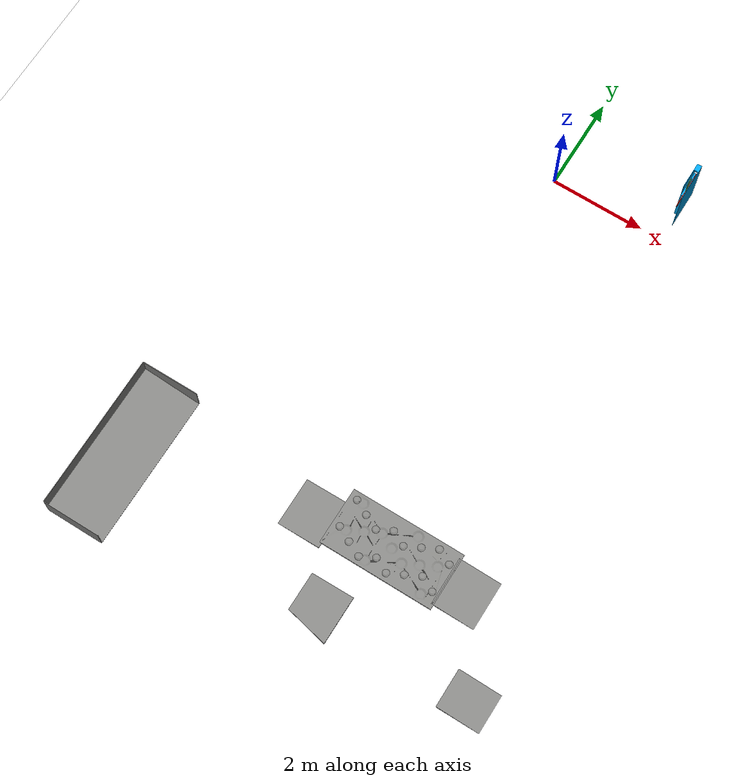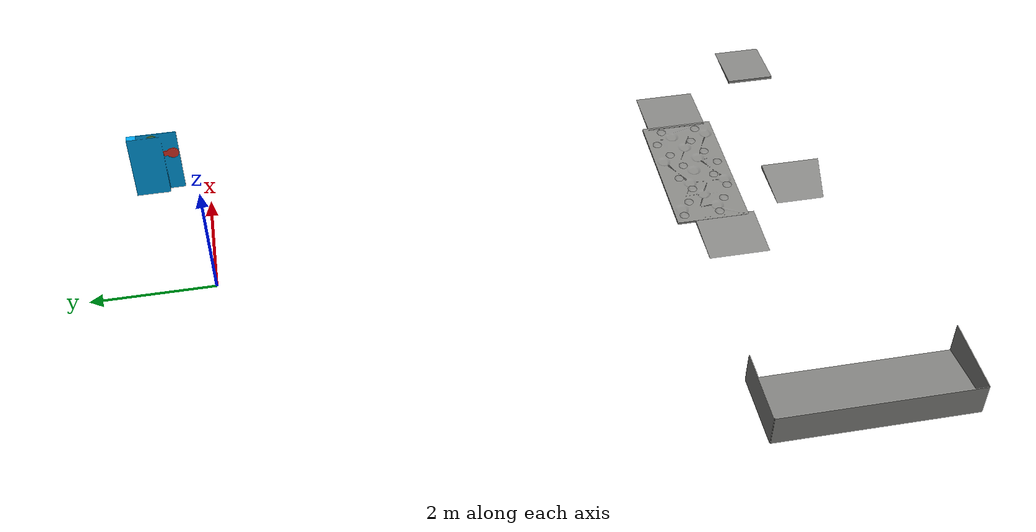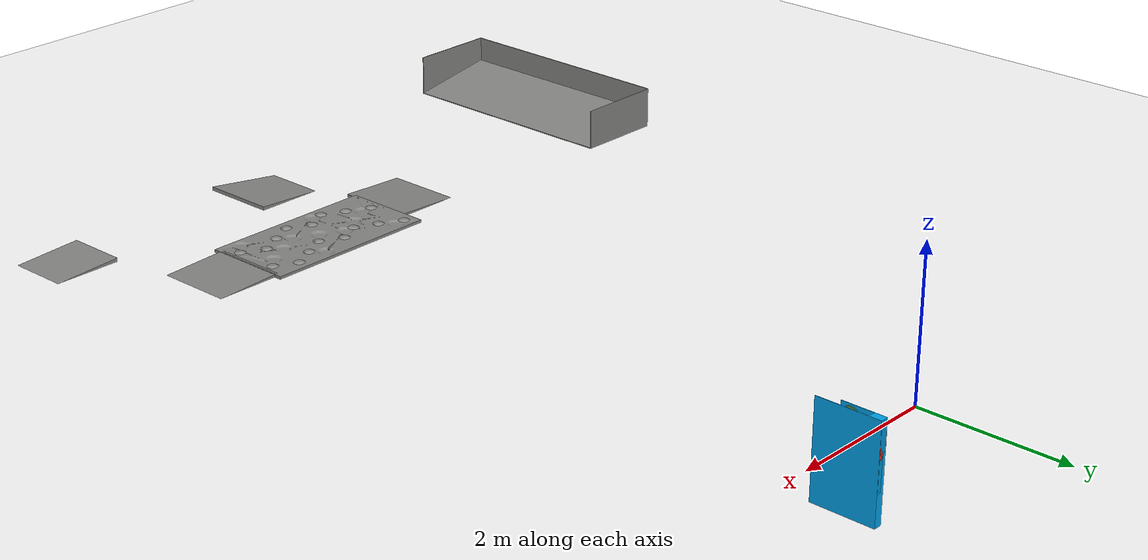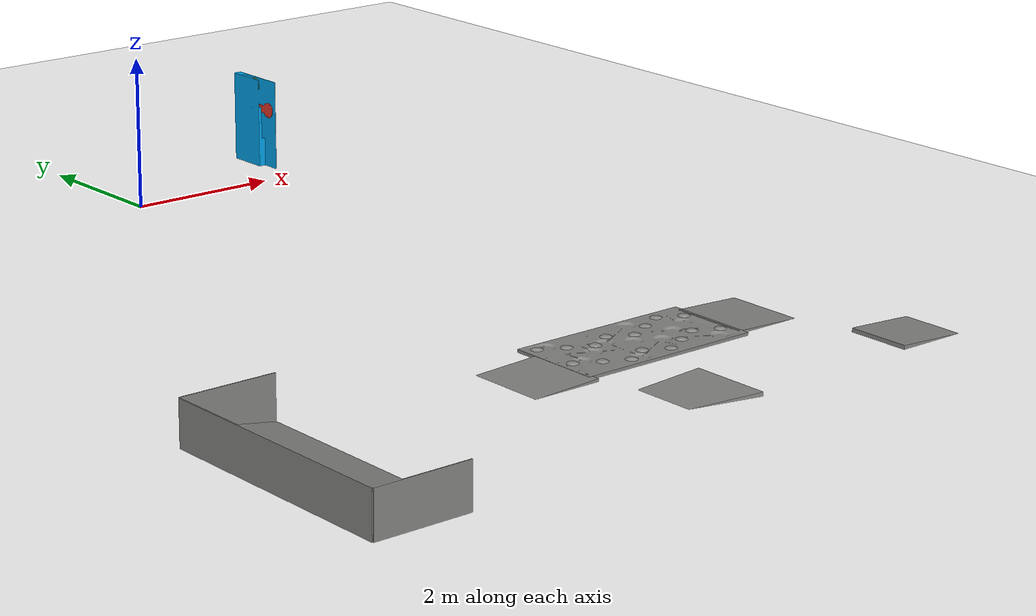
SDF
<sdf version="1.10">
 <world name="cfr_obstacle_course">
  <model name="ground">
   <static>true</static>
   <pose>0.005 -4.540 0 0 0 0</pose>
   <link name="link">
    <collision name="collision">
     <geometry><plane><normal>0 0 1</normal><size>30 24</size></plane></geometry>
     <surface>
      <friction>
       <ode><mu>50</mu></ode>
       <bullet><friction>1</friction><rolling_friction>0.001</rolling_friction></bullet>
      </friction>
     </surface>
    </collision>
    <visual name="visual">
     <geometry><plane><normal>0 0 1</normal><size>30 24</size></plane></geometry>
     <material>
      <diffuse>1 1 1 1</diffuse>
      <pbr>
       <metal>
        <albedo_map>model://cfr_arduino_bridge/materials/asphalt_obstacle.png</albedo_map>
        <roughness>0.95</roughness>
        <metalness>0</metalness>
       </metal>
      </pbr>
     </material>
    </visual>
   </link>
  </model>
  <model name="pothole_section">
   <static>true</static>
   <link name="link">
    <visual name="board_visual">
     <pose>1.2561 -8.2255 0.0000 0.0000 0.0000 0.0000</pose>
     <geometry><mesh><uri>model://cfr_arduino_bridge/meshes/pothole_board.stl</uri></mesh></geometry>
     <material><diffuse>0.52 0.52 0.51 1</diffuse></material>
    </visual>
    <collision name="base_collision">
     <pose>1.2561 -8.2255 0.0100 0.0000 0.0000 0.0000</pose>
     <geometry><box><size>2.4384 1.2192 0.0200</size></box></geometry>
    </collision>
    <collision name="top_0_collision">
     <pose>1.2569 -8.8051 0.0290 0.0000 0.0000 0.0000</pose>
     <geometry><box><size>2.4400 0.0600 0.0181</size></box></geometry>
    </collision>
    <collision name="top_1_collision">
     <pose>0.4669 -8.7651 0.0290 0.0000 0.0000 0.0000</pose>
     <geometry><box><size>0.8600 0.0200 0.0181</size></box></geometry>
    </collision>
    <collision name="top_2_collision">
     <pose>0.4569 -8.7451 0.0290 0.0000 0.0000 0.0000</pose>
     <geometry><box><size>0.8400 0.0200 0.0181</size></box></geometry>
    </collision>
    <collision name="top_3_collision">
     <pose>0.4469 -8.6851 0.0290 0.0000 0.0000 0.0000</pose>
     <geometry><box><size>0.8200 0.1000 0.0181</size></box></geometry>
    </collision>
    <collision name="top_4_collision">
     <pose>0.4569 -8.6251 0.0290 0.0000 0.0000 0.0000</pose>
     <geometry><box><size>0.8400 0.0200 0.0181</size></box></geometry>
    </collision>
    <collision name="top_5_collision">
     <pose>0.4669 -8.6051 0.0290 0.0000 0.0000 0.0000</pose>
     <geometry><box><size>0.8600 0.0200 0.0181</size></box></geometry>
    </collision>
    <collision name="top_6_collision">
     <pose>0.4869 -8.5851 0.0290 0.0000 0.0000 0.0000</pose>
     <geometry><box><size>0.9000 0.0200 0.0181</size></box></geometry>
    </collision>
    <collision name="top_7_collision">
     <pose>1.2569 -8.5251 0.0290 0.0000 0.0000 0.0000</pose>
     <geometry><box><size>2.4400 0.1000 0.0181</size></box></geometry>
    </collision>
    <collision name="top_8_collision">
     <pose>0.1669 -8.4651 0.0290 0.0000 0.0000 0.0000</pose>
     <geometry><box><size>0.2600 0.0200 0.0181</size></box></geometry>
    </collision>
    <collision name="top_9_collision">
     <pose>0.1569 -8.4451 0.0290 0.0000 0.0000 0.0000</pose>
     <geometry><box><size>0.2400 0.0200 0.0181</size></box></geometry>
    </collision>
    <collision name="top_10_collision">
     <pose>0.1469 -8.4151 0.0290 0.0000 0.0000 0.0000</pose>
     <geometry><box><size>0.2200 0.0400 0.0181</size></box></geometry>
    </collision>
    <collision name="top_11_collision">
     <pose>0.1369 -8.3751 0.0290 0.0000 0.0000 0.0000</pose>
     <geometry><box><size>0.2000 0.0400 0.0181</size></box></geometry>
    </collision>
    <collision name="top_12_collision">
     <pose>0.1469 -8.3351 0.0290 0.0000 0.0000 0.0000</pose>
     <geometry><box><size>0.2200 0.0400 0.0181</size></box></geometry>
    </collision>
    <collision name="top_13_collision">
     <pose>0.1569 -8.3051 0.0290 0.0000 0.0000 0.0000</pose>
     <geometry><box><size>0.2400 0.0200 0.0181</size></box></geometry>
    </collision>
    <collision name="top_14_collision">
     <pose>0.1769 -8.2851 0.0290 0.0000 0.0000 0.0000</pose>
     <geometry><box><size>0.2800 0.0200 0.0181</size></box></geometry>
    </collision>
    <collision name="top_15_collision">
     <pose>0.2969 -8.2251 0.0290 0.0000 0.0000 0.0000</pose>
     <geometry><box><size>0.5200 0.1000 0.0181</size></box></geometry>
    </collision>
    <collision name="top_16_collision">
     <pose>0.3069 -8.1651 0.0290 0.0000 0.0000 0.0000</pose>
     <geometry><box><size>0.5400 0.0200 0.0181</size></box></geometry>
    </collision>
    <collision name="top_17_collision">
     <pose>0.3169 -8.1451 0.0290 0.0000 0.0000 0.0000</pose>
     <geometry><box><size>0.5600 0.0200 0.0181</size></box></geometry>
    </collision>
    <collision name="top_18_collision">
     <pose>0.4569 -8.1251 0.0290 0.0000 0.0000 0.0000</pose>
     <geometry><box><size>0.8400 0.0200 0.0181</size></box></geometry>
    </collision>
    <collision name="top_19_collision">
     <pose>0.4469 -8.0651 0.0290 0.0000 0.0000 0.0000</pose>
     <geometry><box><size>0.8200 0.1000 0.0181</size></box></geometry>
    </collision>
    <collision name="top_20_collision">
     <pose>0.4569 -8.0051 0.0290 0.0000 0.0000 0.0000</pose>
     <geometry><box><size>0.8400 0.0200 0.0181</size></box></geometry>
    </collision>
    <collision name="top_21_collision">
     <pose>0.4769 -7.9851 0.0290 0.0000 0.0000 0.0000</pose>
     <geometry><box><size>0.8800 0.0200 0.0181</size></box></geometry>
    </collision>
    <collision name="top_22_collision">
     <pose>1.2569 -7.9251 0.0290 0.0000 0.0000 0.0000</pose>
     <geometry><box><size>2.4400 0.1000 0.0181</size></box></geometry>
    </collision>
    <collision name="top_23_collision">
     <pose>0.1769 -7.8651 0.0290 0.0000 0.0000 0.0000</pose>
     <geometry><box><size>0.2800 0.0200 0.0181</size></box></geometry>
    </collision>
    <collision name="top_24_collision">
     <pose>0.1569 -7.8451 0.0290 0.0000 0.0000 0.0000</pose>
     <geometry><box><size>0.2400 0.0200 0.0181</size></box></geometry>
    </collision>
    <collision name="top_25_collision">
     <pose>0.1469 -7.7851 0.0290 0.0000 0.0000 0.0000</pose>
     <geometry><box><size>0.2200 0.1000 0.0181</size></box></geometry>
    </collision>
    <collision name="top_26_collision">
     <pose>0.1369 -7.7251 0.0290 0.0000 0.0000 0.0000</pose>
     <geometry><box><size>0.2000 0.0200 0.0181</size></box></geometry>
    </collision>
    <collision name="top_27_collision">
     <pose>0.1269 -7.7051 0.0290 0.0000 0.0000 0.0000</pose>
     <geometry><box><size>0.1800 0.0200 0.0181</size></box></geometry>
    </collision>
    <collision name="top_28_collision">
     <pose>0.1169 -7.6851 0.0290 0.0000 0.0000 0.0000</pose>
     <geometry><box><size>0.1600 0.0200 0.0181</size></box></geometry>
    </collision>
    <collision name="top_29_collision">
     <pose>0.1069 -7.6651 0.0290 0.0000 0.0000 0.0000</pose>
     <geometry><box><size>0.1400 0.0200 0.0181</size></box></geometry>
    </collision>
    <collision name="top_30_collision">
     <pose>1.2569 -7.6351 0.0290 0.0000 0.0000 0.0000</pose>
     <geometry><box><size>2.4400 0.0400 0.0181</size></box></geometry>
    </collision>
    <collision name="top_31_collision">
     <pose>1.3369 -7.6651 0.0290 0.0000 0.0000 0.0000</pose>
     <geometry><box><size>2.2800 0.0200 0.0181</size></box></geometry>
    </collision>
    <collision name="top_32_collision">
     <pose>0.9469 -7.8651 0.0290 0.0000 0.0000 0.0000</pose>
     <geometry><box><size>1.1800 0.0200 0.0181</size></box></geometry>
    </collision>
    <collision name="top_33_collision">
     <pose>0.4769 -8.2851 0.0290 0.0000 0.0000 0.0000</pose>
     <geometry><box><size>0.2000 0.0200 0.0181</size></box></geometry>
    </collision>
    <collision name="top_34_collision">
     <pose>0.9569 -8.4651 0.0290 0.0000 0.0000 0.0000</pose>
     <geometry><box><size>1.1200 0.0200 0.0181</size></box></geometry>
    </collision>
    <collision name="top_35_collision">
     <pose>0.9469 -7.8451 0.0290 0.0000 0.0000 0.0000</pose>
     <geometry><box><size>1.1000 0.0200 0.0181</size></box></geometry>
    </collision>
    <collision name="top_36_collision">
     <pose>0.9569 -7.6851 0.0290 0.0000 0.0000 0.0000</pose>
     <geometry><box><size>1.1200 0.0200 0.0181</size></box></geometry>
    </collision>
    <collision name="top_37_collision">
     <pose>0.9569 -8.4451 0.0290 0.0000 0.0000 0.0000</pose>
     <geometry><box><size>1.0800 0.0200 0.0181</size></box></geometry>
    </collision>
    <collision name="top_38_collision">
     <pose>0.9469 -8.3251 0.0290 0.0000 0.0000 0.0000</pose>
     <geometry><box><size>1.0600 0.0200 0.0181</size></box></geometry>
    </collision>
    <collision name="top_39_collision">
     <pose>0.5069 -8.3051 0.0290 0.0000 0.0000 0.0000</pose>
     <geometry><box><size>0.1800 0.0200 0.0181</size></box></geometry>
    </collision>
    <collision name="top_40_collision">
     <pose>0.9469 -7.8251 0.0290 0.0000 0.0000 0.0000</pose>
     <geometry><box><size>1.0600 0.0200 0.0181</size></box></geometry>
    </collision>
    <collision name="top_41_collision">
     <pose>0.9469 -7.7051 0.0290 0.0000 0.0000 0.0000</pose>
     <geometry><box><size>1.0600 0.0200 0.0181</size></box></geometry>
    </collision>
    <collision name="top_42_collision">
     <pose>0.9469 -8.3951 0.0290 0.0000 0.0000 0.0000</pose>
     <geometry><box><size>1.0200 0.0800 0.0181</size></box></geometry>
    </collision>
    <collision name="top_43_collision">
     <pose>0.9569 -8.3451 0.0290 0.0000 0.0000 0.0000</pose>
     <geometry><box><size>1.0400 0.0200 0.0181</size></box></geometry>
    </collision>
    <collision name="top_44_collision">
     <pose>0.9569 -7.8051 0.0290 0.0000 0.0000 0.0000</pose>
     <geometry><box><size>1.0400 0.0200 0.0181</size></box></geometry>
    </collision>
    <collision name="top_45_collision">
     <pose>0.9469 -7.7651 0.0290 0.0000 0.0000 0.0000</pose>
     <geometry><box><size>1.0200 0.0600 0.0181</size></box></geometry>
    </collision>
    <collision name="top_46_collision">
     <pose>0.9569 -7.7251 0.0290 0.0000 0.0000 0.0000</pose>
     <geometry><box><size>1.0400 0.0200 0.0181</size></box></geometry>
    </collision>
    <collision name="top_47_collision">
     <pose>0.9469 -8.3051 0.0290 0.0000 0.0000 0.0000</pose>
     <geometry><box><size>0.5000 0.0200 0.0181</size></box></geometry>
    </collision>
    <collision name="top_48_collision">
     <pose>0.7869 -8.1451 0.0290 0.0000 0.0000 0.0000</pose>
     <geometry><box><size>0.1800 0.0200 0.0181</size></box></geometry>
    </collision>
    <collision name="top_49_collision">
     <pose>0.9469 -8.2851 0.0290 0.0000 0.0000 0.0000</pose>
     <geometry><box><size>0.4600 0.0200 0.0181</size></box></geometry>
    </collision>
    <collision name="top_50_collision">
     <pose>0.8169 -8.1651 0.0290 0.0000 0.0000 0.0000</pose>
     <geometry><box><size>0.2000 0.0200 0.0181</size></box></geometry>
    </collision>
    <collision name="top_51_collision">
     <pose>0.9469 -8.2151 0.0290 0.0000 0.0000 0.0000</pose>
     <geometry><box><size>0.4200 0.0800 0.0181</size></box></geometry>
    </collision>
    <collision name="top_52_collision">
     <pose>0.9569 -8.2651 0.0290 0.0000 0.0000 0.0000</pose>
     <geometry><box><size>0.4000 0.0200 0.0181</size></box></geometry>
    </collision>
    <collision name="top_53_collision">
     <pose>1.5569 -8.5851 0.0290 0.0000 0.0000 0.0000</pose>
     <geometry><box><size>1.2000 0.0200 0.0181</size></box></geometry>
    </collision>
    <collision name="top_54_collision">
     <pose>1.0769 -8.1651 0.0290 0.0000 0.0000 0.0000</pose>
     <geometry><box><size>0.2000 0.0200 0.0181</size></box></geometry>
    </collision>
    <collision name="top_55_collision">
     <pose>1.5569 -8.7651 0.0290 0.0000 0.0000 0.0000</pose>
     <geometry><box><size>1.1200 0.0200 0.0181</size></box></geometry>
    </collision>
    <collision name="top_56_collision">
     <pose>1.5569 -7.9851 0.0290 0.0000 0.0000 0.0000</pose>
     <geometry><box><size>1.1200 0.0200 0.0181</size></box></geometry>
    </collision>
    <collision name="top_57_collision">
     <pose>1.5669 -8.6051 0.0290 0.0000 0.0000 0.0000</pose>
     <geometry><box><size>1.1000 0.0200 0.0181</size></box></geometry>
    </collision>
    <collision name="top_58_collision">
     <pose>1.1069 -8.1451 0.0290 0.0000 0.0000 0.0000</pose>
     <geometry><box><size>0.1800 0.0200 0.0181</size></box></geometry>
    </collision>
    <collision name="top_59_collision">
     <pose>1.5569 -8.0051 0.0290 0.0000 0.0000 0.0000</pose>
     <geometry><box><size>1.0800 0.0200 0.0181</size></box></geometry>
    </collision>
    <collision name="top_60_collision">
     <pose>1.5669 -8.7451 0.0290 0.0000 0.0000 0.0000</pose>
     <geometry><box><size>1.0600 0.0200 0.0181</size></box></geometry>
    </collision>
    <collision name="top_61_collision">
     <pose>1.5569 -8.7251 0.0290 0.0000 0.0000 0.0000</pose>
     <geometry><box><size>1.0400 0.0200 0.0181</size></box></geometry>
    </collision>
    <collision name="top_62_collision">
     <pose>1.5569 -8.6451 0.0290 0.0000 0.0000 0.0000</pose>
     <geometry><box><size>1.0400 0.0200 0.0181</size></box></geometry>
    </collision>
    <collision name="top_63_collision">
     <pose>1.5669 -8.6251 0.0290 0.0000 0.0000 0.0000</pose>
     <geometry><box><size>1.0600 0.0200 0.0181</size></box></geometry>
    </collision>
    <collision name="top_64_collision">
     <pose>1.5669 -8.1251 0.0290 0.0000 0.0000 0.0000</pose>
     <geometry><box><size>1.0600 0.0200 0.0181</size></box></geometry>
    </collision>
    <collision name="top_65_collision">
     <pose>1.5569 -8.1051 0.0290 0.0000 0.0000 0.0000</pose>
     <geometry><box><size>1.0400 0.0200 0.0181</size></box></geometry>
    </collision>
    <collision name="top_66_collision">
     <pose>1.5569 -8.0451 0.0290 0.0000 0.0000 0.0000</pose>
     <geometry><box><size>1.0400 0.0200 0.0181</size></box></geometry>
    </collision>
    <collision name="top_67_collision">
     <pose>1.0469 -8.0251 0.0290 0.0000 0.0000 0.0000</pose>
     <geometry><box><size>0.0200 0.0200 0.0181</size></box></geometry>
    </collision>
    <collision name="top_68_collision">
     <pose>1.5669 -8.6851 0.0290 0.0000 0.0000 0.0000</pose>
     <geometry><box><size>1.0200 0.0600 0.0181</size></box></geometry>
    </collision>
    <collision name="top_69_collision">
     <pose>1.5669 -8.0751 0.0290 0.0000 0.0000 0.0000</pose>
     <geometry><box><size>1.0200 0.0400 0.0181</size></box></geometry>
    </collision>
    <collision name="top_70_collision">
     <pose>1.5769 -8.0251 0.0290 0.0000 0.0000 0.0000</pose>
     <geometry><box><size>1.0000 0.0200 0.0181</size></box></geometry>
    </collision>
    <collision name="top_71_collision">
     <pose>1.4069 -8.3051 0.0290 0.0000 0.0000 0.0000</pose>
     <geometry><box><size>0.1800 0.0200 0.0181</size></box></geometry>
    </collision>
    <collision name="top_72_collision">
     <pose>1.5669 -8.1451 0.0290 0.0000 0.0000 0.0000</pose>
     <geometry><box><size>0.5000 0.0200 0.0181</size></box></geometry>
    </collision>
    <collision name="top_73_collision">
     <pose>1.4369 -8.2851 0.0290 0.0000 0.0000 0.0000</pose>
     <geometry><box><size>0.2000 0.0200 0.0181</size></box></geometry>
    </collision>
    <collision name="top_74_collision">
     <pose>1.5569 -8.2651 0.0290 0.0000 0.0000 0.0000</pose>
     <geometry><box><size>0.4400 0.0200 0.0181</size></box></geometry>
    </collision>
    <collision name="top_75_collision">
     <pose>1.5569 -8.1851 0.0290 0.0000 0.0000 0.0000</pose>
     <geometry><box><size>0.4400 0.0200 0.0181</size></box></geometry>
    </collision>
    <collision name="top_76_collision">
     <pose>1.5669 -8.1651 0.0290 0.0000 0.0000 0.0000</pose>
     <geometry><box><size>0.4600 0.0200 0.0181</size></box></geometry>
    </collision>
    <collision name="top_77_collision">
     <pose>1.5669 -8.2251 0.0290 0.0000 0.0000 0.0000</pose>
     <geometry><box><size>0.4200 0.0600 0.0181</size></box></geometry>
    </collision>
    <collision name="top_78_collision">
     <pose>2.0269 -7.8651 0.0290 0.0000 0.0000 0.0000</pose>
     <geometry><box><size>0.9000 0.0200 0.0181</size></box></geometry>
    </collision>
    <collision name="top_79_collision">
     <pose>2.0369 -8.4651 0.0290 0.0000 0.0000 0.0000</pose>
     <geometry><box><size>0.8800 0.0200 0.0181</size></box></geometry>
    </collision>
    <collision name="top_80_collision">
     <pose>1.6969 -8.2851 0.0290 0.0000 0.0000 0.0000</pose>
     <geometry><box><size>0.2000 0.0200 0.0181</size></box></geometry>
    </collision>
    <collision name="top_81_collision">
     <pose>2.0469 -7.8451 0.0290 0.0000 0.0000 0.0000</pose>
     <geometry><box><size>0.8600 0.0200 0.0181</size></box></geometry>
    </collision>
    <collision name="top_82_collision">
     <pose>2.0469 -7.6851 0.0290 0.0000 0.0000 0.0000</pose>
     <geometry><box><size>0.8600 0.0200 0.0181</size></box></geometry>
    </collision>
    <collision name="top_83_collision">
     <pose>2.0569 -8.4451 0.0290 0.0000 0.0000 0.0000</pose>
     <geometry><box><size>0.8400 0.0200 0.0181</size></box></geometry>
    </collision>
    <collision name="top_84_collision">
     <pose>2.0569 -8.3251 0.0290 0.0000 0.0000 0.0000</pose>
     <geometry><box><size>0.8400 0.0200 0.0181</size></box></geometry>
    </collision>
    <collision name="top_85_collision">
     <pose>1.7269 -8.3051 0.0290 0.0000 0.0000 0.0000</pose>
     <geometry><box><size>0.1800 0.0200 0.0181</size></box></geometry>
    </collision>
    <collision name="top_86_collision">
     <pose>2.0569 -7.8251 0.0290 0.0000 0.0000 0.0000</pose>
     <geometry><box><size>0.8400 0.0200 0.0181</size></box></geometry>
    </collision>
    <collision name="top_87_collision">
     <pose>2.0569 -7.7051 0.0290 0.0000 0.0000 0.0000</pose>
     <geometry><box><size>0.8400 0.0200 0.0181</size></box></geometry>
    </collision>
    <collision name="top_88_collision">
     <pose>2.0669 -8.3851 0.0290 0.0000 0.0000 0.0000</pose>
     <geometry><box><size>0.8200 0.1000 0.0181</size></box></geometry>
    </collision>
    <collision name="top_89_collision">
     <pose>2.0669 -7.7651 0.0290 0.0000 0.0000 0.0000</pose>
     <geometry><box><size>0.8200 0.1000 0.0181</size></box></geometry>
    </collision>
    <collision name="top_90_collision">
     <pose>2.1969 -8.3051 0.0290 0.0000 0.0000 0.0000</pose>
     <geometry><box><size>0.5600 0.0200 0.0181</size></box></geometry>
    </collision>
    <collision name="top_91_collision">
     <pose>2.0069 -8.1451 0.0290 0.0000 0.0000 0.0000</pose>
     <geometry><box><size>0.1800 0.0200 0.0181</size></box></geometry>
    </collision>
    <collision name="top_92_collision">
     <pose>2.2069 -8.2851 0.0290 0.0000 0.0000 0.0000</pose>
     <geometry><box><size>0.5400 0.0200 0.0181</size></box></geometry>
    </collision>
    <collision name="top_93_collision">
     <pose>2.0369 -8.1651 0.0290 0.0000 0.0000 0.0000</pose>
     <geometry><box><size>0.2000 0.0200 0.0181</size></box></geometry>
    </collision>
    <collision name="top_94_collision">
     <pose>2.2169 -8.2251 0.0290 0.0000 0.0000 0.0000</pose>
     <geometry><box><size>0.5200 0.1000 0.0181</size></box></geometry>
    </collision>
    <collision name="top_95_collision">
     <pose>2.3269 -8.5851 0.0290 0.0000 0.0000 0.0000</pose>
     <geometry><box><size>0.3000 0.0200 0.0181</size></box></geometry>
    </collision>
    <collision name="top_96_collision">
     <pose>2.3369 -8.1651 0.0290 0.0000 0.0000 0.0000</pose>
     <geometry><box><size>0.2800 0.0200 0.0181</size></box></geometry>
    </collision>
    <collision name="top_97_collision">
     <pose>2.3469 -8.7651 0.0290 0.0000 0.0000 0.0000</pose>
     <geometry><box><size>0.2600 0.0200 0.0181</size></box></geometry>
    </collision>
    <collision name="top_98_collision">
     <pose>2.3469 -7.9851 0.0290 0.0000 0.0000 0.0000</pose>
     <geometry><box><size>0.2600 0.0200 0.0181</size></box></geometry>
    </collision>
    <collision name="top_99_collision">
     <pose>2.3569 -8.6051 0.0290 0.0000 0.0000 0.0000</pose>
     <geometry><box><size>0.2400 0.0200 0.0181</size></box></geometry>
    </collision>
    <collision name="top_100_collision">
     <pose>2.3569 -8.1451 0.0290 0.0000 0.0000 0.0000</pose>
     <geometry><box><size>0.2400 0.0200 0.0181</size></box></geometry>
    </collision>
    <collision name="top_101_collision">
     <pose>2.3569 -8.0051 0.0290 0.0000 0.0000 0.0000</pose>
     <geometry><box><size>0.2400 0.0200 0.0181</size></box></geometry>
    </collision>
    <collision name="top_102_collision">
     <pose>2.3669 -8.7451 0.0290 0.0000 0.0000 0.0000</pose>
     <geometry><box><size>0.2200 0.0200 0.0181</size></box></geometry>
    </collision>
    <collision name="top_103_collision">
     <pose>2.3669 -8.6551 0.0290 0.0000 0.0000 0.0000</pose>
     <geometry><box><size>0.2200 0.0800 0.0181</size></box></geometry>
    </collision>
    <collision name="top_104_collision">
     <pose>2.2669 -8.1151 0.0290 0.0000 0.0000 0.0000</pose>
     <geometry><box><size>0.0200 0.0400 0.0181</size></box></geometry>
    </collision>
    <collision name="top_105_collision">
     <pose>2.2669 -8.0351 0.0290 0.0000 0.0000 0.0000</pose>
     <geometry><box><size>0.0200 0.0400 0.0181</size></box></geometry>
    </collision>
    <collision name="top_106_collision">
     <pose>2.3769 -8.7151 0.0290 0.0000 0.0000 0.0000</pose>
     <geometry><box><size>0.2000 0.0400 0.0181</size></box></geometry>
    </collision>
    <collision name="top_107_collision">
     <pose>2.3869 -8.0751 0.0290 0.0000 0.0000 0.0000</pose>
     <geometry><box><size>0.1800 0.1200 0.0181</size></box></geometry>
    </collision>
    <visual name="bump_0_visual">
     <pose>0.1958 -7.7682 0.0000 0.0000 0.0000 0.0000</pose>
     <geometry><mesh><uri>model://cfr_arduino_bridge/meshes/pothole_bump.stl</uri></mesh></geometry>
     <material><diffuse>0.52 0.52 0.51 1</diffuse></material>
    </visual>
    <collision name="bump_0_body_collision">
     <pose>0.1958 -7.7682 0.0476 0.0000 0.0000 0.0000</pose>
     <geometry><cylinder><radius>0.0760</radius><length>0.0190</length></cylinder></geometry>
    </collision>
    <visual name="bump_1_visual">
     <pose>0.1958 -8.3778 0.0000 0.0000 0.0000 0.0000</pose>
     <geometry><mesh><uri>model://cfr_arduino_bridge/meshes/pothole_bump.stl</uri></mesh></geometry>
     <material><diffuse>0.52 0.52 0.51 1</diffuse></material>
    </visual>
    <collision name="bump_1_body_collision">
     <pose>0.1958 -8.3778 0.0476 0.0000 0.0000 0.0000</pose>
     <geometry><cylinder><radius>0.0760</radius><length>0.0190</length></cylinder></geometry>
    </collision>
    <visual name="bump_2_visual">
     <pose>0.5005 -7.9269 0.0000 0.0000 0.0000 0.0000</pose>
     <geometry><mesh><uri>model://cfr_arduino_bridge/meshes/pothole_bump.stl</uri></mesh></geometry>
     <material><diffuse>0.52 0.52 0.51 1</diffuse></material>
    </visual>
    <collision name="bump_2_body_collision">
     <pose>0.5005 -7.9269 0.0476 0.0000 0.0000 0.0000</pose>
     <geometry><cylinder><radius>0.0760</radius><length>0.0190</length></cylinder></geometry>
    </collision>
    <visual name="bump_3_visual">
     <pose>0.5005 -8.5365 0.0000 0.0000 0.0000 0.0000</pose>
     <geometry><mesh><uri>model://cfr_arduino_bridge/meshes/pothole_bump.stl</uri></mesh></geometry>
     <material><diffuse>0.52 0.52 0.51 1</diffuse></material>
    </visual>
    <collision name="bump_3_body_collision">
     <pose>0.5005 -8.5365 0.0476 0.0000 0.0000 0.0000</pose>
     <geometry><cylinder><radius>0.0760</radius><length>0.0190</length></cylinder></geometry>
    </collision>
    <visual name="bump_4_visual">
     <pose>1.1038 -7.9206 0.0000 0.0000 0.0000 0.0000</pose>
     <geometry><mesh><uri>model://cfr_arduino_bridge/meshes/pothole_bump.stl</uri></mesh></geometry>
     <material><diffuse>0.52 0.52 0.51 1</diffuse></material>
    </visual>
    <collision name="bump_4_body_collision">
     <pose>1.1038 -7.9206 0.0476 0.0000 0.0000 0.0000</pose>
     <geometry><cylinder><radius>0.0760</radius><length>0.0190</length></cylinder></geometry>
    </collision>
    <visual name="bump_5_visual">
     <pose>1.1038 -8.5302 0.0000 0.0000 0.0000 0.0000</pose>
     <geometry><mesh><uri>model://cfr_arduino_bridge/meshes/pothole_bump.stl</uri></mesh></geometry>
     <material><diffuse>0.52 0.52 0.51 1</diffuse></material>
    </visual>
    <collision name="bump_5_body_collision">
     <pose>1.1038 -8.5302 0.0476 0.0000 0.0000 0.0000</pose>
     <geometry><cylinder><radius>0.0760</radius><length>0.0190</length></cylinder></geometry>
    </collision>
    <visual name="bump_6_visual">
     <pose>1.7134 -7.9206 0.0000 0.0000 0.0000 0.0000</pose>
     <geometry><mesh><uri>model://cfr_arduino_bridge/meshes/pothole_bump.stl</uri></mesh></geometry>
     <material><diffuse>0.52 0.52 0.51 1</diffuse></material>
    </visual>
    <collision name="bump_6_body_collision">
     <pose>1.7134 -7.9206 0.0476 0.0000 0.0000 0.0000</pose>
     <geometry><cylinder><radius>0.0760</radius><length>0.0190</length></cylinder></geometry>
    </collision>
    <visual name="bump_7_visual">
     <pose>1.7134 -8.5302 0.0000 0.0000 0.0000 0.0000</pose>
     <geometry><mesh><uri>model://cfr_arduino_bridge/meshes/pothole_bump.stl</uri></mesh></geometry>
     <material><diffuse>0.52 0.52 0.51 1</diffuse></material>
    </visual>
    <collision name="bump_7_body_collision">
     <pose>1.7134 -8.5302 0.0476 0.0000 0.0000 0.0000</pose>
     <geometry><cylinder><radius>0.0760</radius><length>0.0190</length></cylinder></geometry>
    </collision>
    <visual name="bump_8_visual">
     <pose>1.4086 -8.0730 0.0000 0.0000 0.0000 0.0000</pose>
     <geometry><mesh><uri>model://cfr_arduino_bridge/meshes/pothole_bump.stl</uri></mesh></geometry>
     <material><diffuse>0.52 0.52 0.51 1</diffuse></material>
    </visual>
    <collision name="bump_8_body_collision">
     <pose>1.4086 -8.0730 0.0476 0.0000 0.0000 0.0000</pose>
     <geometry><cylinder><radius>0.0760</radius><length>0.0190</length></cylinder></geometry>
    </collision>
    <visual name="bump_9_visual">
     <pose>1.4086 -8.6826 0.0000 0.0000 0.0000 0.0000</pose>
     <geometry><mesh><uri>model://cfr_arduino_bridge/meshes/pothole_bump.stl</uri></mesh></geometry>
     <material><diffuse>0.52 0.52 0.51 1</diffuse></material>
    </visual>
    <collision name="bump_9_body_collision">
     <pose>1.4086 -8.6826 0.0476 0.0000 0.0000 0.0000</pose>
     <geometry><cylinder><radius>0.0760</radius><length>0.0190</length></cylinder></geometry>
    </collision>
    <visual name="bump_10_visual">
     <pose>2.0182 -7.7682 0.0000 0.0000 0.0000 0.0000</pose>
     <geometry><mesh><uri>model://cfr_arduino_bridge/meshes/pothole_bump.stl</uri></mesh></geometry>
     <material><diffuse>0.52 0.52 0.51 1</diffuse></material>
    </visual>
    <collision name="bump_10_body_collision">
     <pose>2.0182 -7.7682 0.0476 0.0000 0.0000 0.0000</pose>
     <geometry><cylinder><radius>0.0760</radius><length>0.0190</length></cylinder></geometry>
    </collision>
    <visual name="bump_11_visual">
     <pose>2.0182 -8.3778 0.0000 0.0000 0.0000 0.0000</pose>
     <geometry><mesh><uri>model://cfr_arduino_bridge/meshes/pothole_bump.stl</uri></mesh></geometry>
     <material><diffuse>0.52 0.52 0.51 1</diffuse></material>
    </visual>
    <collision name="bump_11_body_collision">
     <pose>2.0182 -8.3778 0.0476 0.0000 0.0000 0.0000</pose>
     <geometry><cylinder><radius>0.0760</radius><length>0.0190</length></cylinder></geometry>
    </collision>
    <visual name="bump_12_visual">
     <pose>2.3230 -7.9206 0.0000 0.0000 0.0000 0.0000</pose>
     <geometry><mesh><uri>model://cfr_arduino_bridge/meshes/pothole_bump.stl</uri></mesh></geometry>
     <material><diffuse>0.52 0.52 0.51 1</diffuse></material>
    </visual>
    <collision name="bump_12_body_collision">
     <pose>2.3230 -7.9206 0.0476 0.0000 0.0000 0.0000</pose>
     <geometry><cylinder><radius>0.0760</radius><length>0.0190</length></cylinder></geometry>
    </collision>
    <visual name="bump_13_visual">
     <pose>2.3230 -8.5302 0.0000 0.0000 0.0000 0.0000</pose>
     <geometry><mesh><uri>model://cfr_arduino_bridge/meshes/pothole_bump.stl</uri></mesh></geometry>
     <material><diffuse>0.52 0.52 0.51 1</diffuse></material>
    </visual>
    <collision name="bump_13_body_collision">
     <pose>2.3230 -8.5302 0.0476 0.0000 0.0000 0.0000</pose>
     <geometry><cylinder><radius>0.0760</radius><length>0.0190</length></cylinder></geometry>
    </collision>
    <visual name="bump_14_visual">
     <pose>0.8054 -8.0730 0.0000 0.0000 0.0000 0.0000</pose>
     <geometry><mesh><uri>model://cfr_arduino_bridge/meshes/pothole_bump.stl</uri></mesh></geometry>
     <material><diffuse>0.52 0.52 0.51 1</diffuse></material>
    </visual>
    <collision name="bump_14_body_collision">
     <pose>0.8054 -8.0730 0.0476 0.0000 0.0000 0.0000</pose>
     <geometry><cylinder><radius>0.0760</radius><length>0.0190</length></cylinder></geometry>
    </collision>
    <visual name="bump_15_visual">
     <pose>0.8054 -8.6826 0.0000 0.0000 0.0000 0.0000</pose>
     <geometry><mesh><uri>model://cfr_arduino_bridge/meshes/pothole_bump.stl</uri></mesh></geometry>
     <material><diffuse>0.52 0.52 0.51 1</diffuse></material>
    </visual>
    <collision name="bump_15_body_collision">
     <pose>0.8054 -8.6826 0.0476 0.0000 0.0000 0.0000</pose>
     <geometry><cylinder><radius>0.0760</radius><length>0.0190</length></cylinder></geometry>
    </collision>
   </link>
  </model>
  <model name="pothole_entry_ramp">
   <static>true</static>
   <link name="link">
    <visual name="pothole_entry_ramp_visual">
     <pose>-0.3693 -8.4286 0.0000 0.0000 0.0000 0.0000</pose>
     <geometry><mesh><uri>model://cfr_arduino_bridge/meshes/ramp_pothole_entry.stl</uri></mesh></geometry>
     <material><diffuse>0.52 0.52 0.51 1</diffuse></material>
    </visual>
    <collision name="pothole_entry_ramp_wedge_collision">
     <pose>-0.3693 -8.4286 -0.0010 0.0000 -0.0468 0.0000</pose>
     <geometry><box><size>0.8138 0.8129 0.0400</size></box></geometry>
    </collision>
   </link>
  </model>
  <model name="pothole_exit_ramp">
   <static>true</static>
   <link name="link">
    <visual name="pothole_exit_ramp_visual">
     <pose>2.8814 -8.2252 0.0000 0.0000 0.0000 3.1416</pose>
     <geometry><mesh><uri>model://cfr_arduino_bridge/meshes/ramp_pothole_entry.stl</uri></mesh></geometry>
     <material><diffuse>0.52 0.52 0.51 1</diffuse></material>
    </visual>
    <collision name="pothole_exit_ramp_wedge_collision">
     <pose>2.8814 -8.2252 -0.0010 0.0000 0.0468 0.0000</pose>
     <geometry><box><size>0.8138 1.2192 0.0400</size></box></geometry>
    </collision>
   </link>
  </model>
  <model name="gravel_entry_ramp">
   <static>true</static>
   <link name="link">
    <visual name="gravel_entry_ramp_visual">
     <pose>3.9476 -9.9089 0.0000 0.0000 0.0000 3.1416</pose>
     <geometry><mesh><uri>model://cfr_arduino_bridge/meshes/ramp_up.stl</uri></mesh></geometry>
     <material><diffuse>0.52 0.52 0.51 1</diffuse></material>
    </visual>
    <collision name="gravel_entry_ramp_wedge_collision">
     <pose>3.9476 -9.9089 0.0054 0.0000 0.0624 0.0000</pose>
     <geometry><box><size>0.8145 0.8126 0.0400</size></box></geometry>
    </collision>
   </link>
  </model>
  <model name="gravel_exit_ramp">
   <static>true</static>
   <link name="link">
    <visual name="gravel_exit_ramp_visual">
     <pose>0.6963 -9.9089 0.0000 0.0000 0.0000 3.1416</pose>
     <geometry><mesh><uri>model://cfr_arduino_bridge/meshes/ramp_narrowing.stl</uri></mesh></geometry>
     <material><diffuse>0.52 0.52 0.51 1</diffuse></material>
    </visual>
    <collision name="gravel_exit_ramp_wedge_collision">
     <pose>0.6963 -9.9089 0.0054 0.0000 -0.0624 0.0000</pose>
     <geometry><box><size>0.8145 1.2192 0.0400</size></box></geometry>
    </collision>
   </link>
  </model>
  <model name="bank">
   <static>true</static>
   <link name="link">
    <visual name="bank_visual">
     <pose>-4.0276 -9.3717 0.0000 0.0000 0.0000 3.1416</pose>
     <geometry><mesh><uri>model://cfr_arduino_bridge/meshes/bank.stl</uri></mesh></geometry>
     <material><diffuse>0.52 0.52 0.51 1</diffuse></material>
    </visual>
    <collision name="surface_collision">
     <pose>-4.0276 -9.3717 0.0711 0.0000 0.1484 0.0000</pose>
     <geometry><box><size>1.2327 3.2513 0.0400</size></box></geometry>
    </collision>
    <collision name="wall_outer_collision">
     <pose>-4.6371 -9.3717 0.2794 0.0000 0.0000 0.0000</pose>
     <geometry><box><size>0.0130 3.2520 0.5588</size></box></geometry>
     <surface>
      <friction>
       <ode><mu>0.3</mu><mu2>0.6</mu2><fdir1>0 0 1</fdir1></ode>
       <bullet><friction>0.3</friction><friction2>0.6</friction2></bullet>
      </friction>
     </surface>
    </collision>
    <collision name="wall_end_a_collision">
     <pose>-4.0211 -11.0037 0.2794 0.0000 0.0000 0.0000</pose>
     <geometry><box><size>1.2190 0.0120 0.5588</size></box></geometry>
     <surface>
      <friction>
       <ode><mu>0.3</mu><mu2>0.6</mu2><fdir1>0 0 1</fdir1></ode>
       <bullet><friction>0.3</friction><friction2>0.6</friction2></bullet>
      </friction>
     </surface>
    </collision>
    <collision name="wall_end_b_collision">
     <pose>-4.0211 -7.7397 0.2794 0.0000 0.0000 0.0000</pose>
     <geometry><box><size>1.2190 0.0120 0.5588</size></box></geometry>
     <surface>
      <friction>
       <ode><mu>0.3</mu><mu2>0.6</mu2><fdir1>0 0 1</fdir1></ode>
       <bullet><friction>0.3</friction><friction2>0.6</friction2></bullet>
      </friction>
     </surface>
    </collision>
   </link>
  </model>
  <model name="start_signal_frame">
   <static>true</static>
   <pose>2.4384 0.8129 0 0 0 -1.57080</pose>
   <link name="link">
    <visual name="frame_visual">
     <geometry><mesh><uri>model://cfr_arduino_bridge/meshes/start_signal_frame.stl</uri></mesh></geometry>
     <material><diffuse>0.00 0.64 0.92 1</diffuse></material>
    </visual>
    <collision name="post_collision">
     <pose>0 0 0.61 0 0 0</pose>
     <geometry><box><size>0.813 0.10 1.219</size></box></geometry>
    </collision>
   </link>
  </model>
  <model name="start_signal_arms">
   <pose>2.4384 0.8129 0.8130 0 0 -1.57080</pose>
   <link name="pivot">
    <inertial><mass>0.1</mass><inertia><ixx>0.001</ixx><iyy>0.001</iyy><izz>0.001</izz></inertia></inertial>
   </link>
   <link name="arms">
    <gravity>false</gravity>
    <inertial><mass>0.5</mass><inertia><ixx>0.002</ixx><iyy>0.03</iyy><izz>0.03</izz></inertia></inertial>
    <visual name="red_visual">
     <geometry><mesh><uri>model://cfr_arduino_bridge/meshes/start_signal_arm_red.stl</uri></mesh></geometry>
     <material><diffuse>0.89 0.21 0.15 1</diffuse></material>
    </visual>
    <visual name="green_visual">
     <pose>0.0000 0.0000 0.0000 0.0000 1.5708 0.0000</pose>
     <geometry><mesh><uri>model://cfr_arduino_bridge/meshes/start_signal_arm_green.stl</uri></mesh></geometry>
     <material><diffuse>0.35 0.60 0.31 1</diffuse></material>
    </visual>
   </link>
   <joint name="world_joint" type="fixed"><parent>world</parent><child>pivot</child></joint>
   <joint name="arm_joint" type="revolute">
    <parent>pivot</parent>
    <child>arms</child>
    <axis>
     <xyz>0 1 0</xyz>
     <limit><lower>0.00000</lower><upper>1.57080</upper><effort>50</effort><velocity>5</velocity></limit>
    </axis>
   </joint>
   <plugin filename="gz-sim-joint-position-controller-system" name="gz::sim::systems::JointPositionController">
    <joint_name>arm_joint</joint_name>
    <topic>/start_signal/arm</topic>
    <p_gain>12</p_gain>
    <i_gain>0.2</i_gain>
    <d_gain>2.0</d_gain>
   </plugin>
  </model>
 </world>
</sdf>
